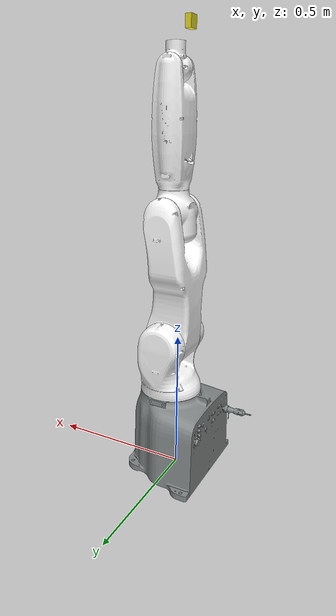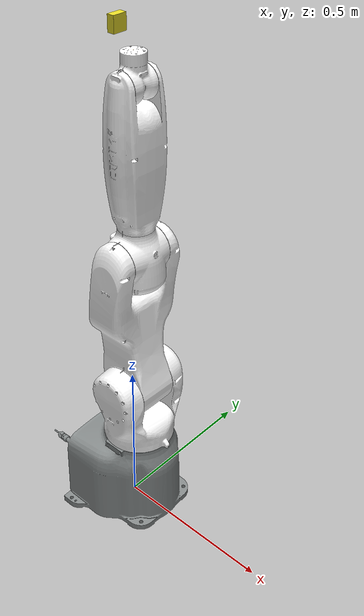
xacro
<?xml version="1.0"?>
<robot xmlns:xacro="http://ros.org/wiki/xacro" name="HLRobot">
    <xacro:property name="PI" value="3.1415926535897931"/>
    <xacro:include filename="arm.xacro" />
    <xacro:include filename="CameraSensor.xacro"/>

    <xacro:Macro_CameraROS name="camera" parent="tool_frame" frame="camera_link" image_topic="image_raw" fov="1.396" hz="10" width="2560" height="1920">
        <origin xyz="0.05 0 0.05" rpy="0 0 0" />
     </xacro:Macro_CameraROS>

    <link name="camera_projection_frame"/>

    <joint name="camera_joint" type="fixed">
        <origin xyz="0 0 0" rpy="-1.5707 0 -1.5707" />
        <parent link="camera_link" />
        <child link="camera_projection_frame" />
    </joint>

</robot>

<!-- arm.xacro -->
<robot xmlns:xacro="http://ros.org/wiki/xacro" name="arm">

    <link name="base_footprint">
        <visual>
            <origin xyz="0 0 0" rpy="0 0 0" />
            <geometry>
                <sphere radius="0.001"/>
            </geometry>
        </visual>
        <collision>
            <origin xyz="0 0 0" rpy="0 0 0" />
            <geometry>
                <sphere radius="0.001"/>
            </geometry>
        </collision>
    </link>
    <link name="base_link">
        <inertial>
            <origin xyz="0.000405214557039469 0.00397651461292238 0.169839806497255" rpy="0 0 0" />
            <mass value="50" />
            <inertia ixx="0.10581489524942" ixy="0.000527121157082633" ixz="-7.56911148408879E-05" iyy="0.107337475091701" iyz="-0.00154168528325628" izz="0.101543534070196" />
        </inertial>
        <visual>
            <origin xyz="0 0 0" rpy="0 0 0" />
            <geometry>
                <mesh filename="package://hlrobot_gazebo/meshes/base_link.STL" />
            </geometry>
            <material name="">
                <color rgba="0.52156862745098 0.541176470588235 0.541176470588235 1" />
            </material>
        </visual>
        <collision>
            <origin xyz="0 0 0" rpy="0 0 0" />
            <geometry>
                <mesh filename="package://hlrobot_gazebo/meshes/base_link.STL" />
            </geometry>
        </collision>
    </link>
    <joint name="base_footprint2base_link" type="fixed">
        <origin xyz="0 0 0" rpy="0 0 -1.5707" />
        <parent link="base_footprint" />
        <child link="base_link" />
    </joint>
    <link name="link1">
        <inertial>
            <origin xyz="0.00618991955563981 0.000434449692377808 0.108490578152082" rpy="0 0 0" />
            <mass value="5.86522389328675" />
            <inertia ixx="0.0701296431279813" ixy="2.32003557486133E-05" ixz="0.000929023712430576" iyy="0.0469454868222595" iyz="-0.000290037040115787" izz="0.0473187424882217" />
        </inertial>
        <visual>
            <origin xyz="0 0 0" rpy="0 0 0" />
            <geometry>
                <mesh filename="package://hlrobot_gazebo/meshes/link1.STL" />
            </geometry>
            <material name="">
                <color rgba="1 1 1 1" />
            </material>
        </visual>
        <collision>
            <origin xyz="0 0 0" rpy="0 0 0" />
            <geometry>
                <mesh filename="package://hlrobot_gazebo/meshes/link1.STL" />
            </geometry>
        </collision>
    </link>
    <joint name="joint1" type="continuous">
        <origin xyz="-0.00013435849002087 0.0245001355111561 0.297" rpy="0 0 1.5707963267949" />
        <parent link="base_link" />
        <child link="link1" />
        <axis xyz="0 0 1" />
    </joint>
    <link name="link2">
        <inertial>
            <origin xyz="-0.0129472421061704 0.195085111512339 -7.49961324365638E-05" rpy="0 0 0" />
            <mass value="10.1072258905016" />
            <inertia ixx="0.263256183053944" ixy="0.00386135478561168" ixz="5.61953803517995E-08" iyy="0.0517012507195787" iyz="-2.05241533594351E-05" izz="0.242545433984185" />
        </inertial>
        <visual>
            <origin xyz="0 0 0" rpy="0 0 0" />
            <geometry>
                <mesh filename="package://hlrobot_gazebo/meshes/link2.STL" />
            </geometry>
            <material name="">
                <color rgba="1 1 1 1" />
            </material>
        </visual>
        <collision>
            <origin xyz="0 0 0" rpy="0 0 0" />
            <geometry>
                <mesh filename="package://hlrobot_gazebo/meshes/link2.STL" />
            </geometry>
        </collision>
    </link>
    <joint name="joint2" type="continuous">
        <origin xyz="0 9.99999999976693E-05 0.189139439157728" rpy="1.5707963267949 0 0" />
        <parent link="link1" />
        <child link="link2" />
        <axis xyz="0 0 -1" />
    </joint>
    <link name="link3">
        <inertial>
            <origin xyz="-0.000108844845618653 -0.0139358636724003 -0.000142913039055006" rpy="0 0 0" />
            <mass value="2.65740566873148" />
            <inertia ixx="0.00886183268521179" ixy="1.37642190281603E-05" ixz="1.284656785324E-08" iyy="0.00678736358244395" iyz="5.73796796321141E-06" izz="0.00937006388060566" />
        </inertial>
        <visual>
            <origin xyz="0 0 0" rpy="0 0 0" />
            <geometry>
                <mesh filename="package://hlrobot_gazebo/meshes/link3.STL" />
            </geometry>
            <material name="">
                <color rgba="1 1 1 1" />
            </material>
        </visual>
        <collision>
            <origin xyz="0 0 0" rpy="0 0 0" />
            <geometry>
                <mesh filename="package://hlrobot_gazebo/meshes/link3.STL" />
            </geometry>
        </collision>
    </link>
    <joint name="joint3" type="continuous">
        <origin xyz="0 0.451860592710981 -0.000100000000000028" rpy="0 0 0" />
        <parent link="link2" />
        <child link="link3" />
        <axis xyz="0 0 -1" />
    </joint>
    <link name="link4">
        <inertial>
            <origin xyz="-8.86388330648964E-05 -8.21928935558796E-05 0.18467124485822" rpy="0 0 0" />
            <mass value="4.34532297508078" />
            <inertia ixx="0.0474113957336292" ixy="4.2127603467986E-08" ixz="-5.26635457332329E-05" iyy="0.0448119152975099" iyz="6.59212483096878E-05" izz="0.00958455134527702" />
        </inertial>
        <visual>
            <origin xyz="0 0 0" rpy="0 0 0" />
            <geometry>
                <mesh filename="package://hlrobot_gazebo/meshes/link4.STL" />
            </geometry>
            <material name="">
                <color rgba="1 1 1 1" />
            </material>
        </visual>
        <collision>
            <origin xyz="0 0 0" rpy="0 0 0" />
            <geometry>
                <mesh filename="package://hlrobot_gazebo/meshes/link4.STL" />
            </geometry>
        </collision>
    </link>
    <joint name="joint4" type="continuous">
        <origin xyz="0 0.0799999999999998 0" rpy="-1.5707963267949 0 0" />
        <parent link="link3" />
        <child link="link4" />
        <axis xyz="0 0 1" />
    </joint>
    <link name="link5">
        <inertial>
            <origin xyz="-9.01966818289611E-09 0.0150673345014429 0.000970287859869526" rpy="0 0 0" />
            <mass value="0.486634760640137" />
            <inertia ixx="0.000670946201229993" ixy="-1.02766841457603E-10" ixz="-6.73537980241108E-10" iyy="0.000391738154780886" iyz="1.16937873469867E-05" izz="0.000627437195953237" />
        </inertial>
        <visual>
            <origin xyz="0 0 0" rpy="0 0 0" />
            <geometry>
                <mesh filename="package://hlrobot_gazebo/meshes/link5.STL" />
            </geometry>
            <material name="">
                <color rgba="1 1 1 1" />
            </material>
        </visual>
        <collision>
            <origin xyz="0 0 0" rpy="0 0 0" />
            <geometry>
                <mesh filename="package://hlrobot_gazebo/meshes/link5.STL" />
            </geometry>
        </collision>
    </link>
    <joint name="joint5" type="continuous">
        <origin xyz="0 0 0.370000000000001" rpy="1.5707963267949 0 0" />
        <parent link="link4" />
        <child link="link5" />
        <axis xyz="0 0 -1" />
    </joint>
    <link name="link6">
        <inertial>
            <origin xyz="0.000182837342452855 0.000101096543022138 0.00313183222146129" rpy="0 0 0" />
            <mass value="0.00778582634380437" />
            <inertia ixx="9.19779718042607E-07" ixy="-1.27003710700796E-08" ixz="-1.52057934315707E-09" iyy="9.08150760544638E-07" iyz="-4.13772433755291E-10" izz="1.77182633837523E-06" />
        </inertial>
        <visual>
            <origin xyz="0 0 0" rpy="0 0 0" />
            <geometry>
                <mesh filename="package://hlrobot_gazebo/meshes/link6.STL" />
            </geometry>
            <material name="">
                <color rgba="1 1 1 1" />
            </material>
        </visual>
        <collision>
            <origin xyz="0 0 0" rpy="0 0 0" />
            <geometry>
                <mesh filename="package://hlrobot_gazebo/meshes/link6.STL" />
            </geometry>
        </collision>
    </link>
    <joint name="joint6" type="continuous">
        <origin xyz="0 0.0772999999999984 0" rpy="1.5707963267949 1.5707963267949 0" />
        <parent link="link5" />
        <child link="link6" />
        <axis xyz="0 0 -1" />
    </joint>
    <link name="tool_frame">
        <visual>
            <origin xyz="0 0 0" rpy="0 0 0" />
            <geometry>
                <sphere radius="0.001"/>
            </geometry>
        </visual>
        <collision>
            <origin xyz="0 0 0" rpy="0 0 0" />
            <geometry>
                <sphere radius="0.001"/>
            </geometry>
        </collision>
    </link>
    <joint name="joint62toolframe" type="fixed">
        <origin xyz="0 0 0" rpy="3.14159 0 -1.5707" />
        <parent link="link6" />
        <child link="tool_frame" />
    </joint>

    <!-- transmission -->
    <transmission name="joint1_trans">
        <type>transmission_interface/SimpleTransmission</type>
        <joint name="joint1">
            <hardwareInterface>hardware_interface/PositionJointInterface</hardwareInterface>
        </joint>
        <actuator name="motor1">
            <mechanicalReduction>1</mechanicalReduction>
        </actuator>
    </transmission>
    <!-- transmission -->
    <transmission name="join2_trans">
        <type>transmission_interface/SimpleTransmission</type>
        <joint name="joint2">
            <hardwareInterface>hardware_interface/PositionJointInterface</hardwareInterface>
        </joint>
        <actuator name="motor2">
            <mechanicalReduction>1</mechanicalReduction>
        </actuator>
    </transmission>
    <!-- transmission -->
    <transmission name="joint3_trans">
        <type>transmission_interface/SimpleTransmission</type>
        <joint name="joint3">
            <hardwareInterface>hardware_interface/PositionJointInterface</hardwareInterface>
        </joint>
        <actuator name="motor3">
            <mechanicalReduction>1</mechanicalReduction>
        </actuator>
    </transmission>
    <!-- transmission -->
    <transmission name="joint4_trans">
        <type>transmission_interface/SimpleTransmission</type>
        <joint name="joint4">
            <hardwareInterface>hardware_interface/PositionJointInterface</hardwareInterface>
        </joint>
        <actuator name="motor4">
            <mechanicalReduction>1</mechanicalReduction>
        </actuator>
    </transmission>
    <!-- transmission -->
    <transmission name="joint5_trans">
        <type>transmission_interface/SimpleTransmission</type>
        <joint name="joint5">
            <hardwareInterface>hardware_interface/PositionJointInterface</hardwareInterface>
        </joint>
        <actuator name="motor5">
            <mechanicalReduction>1</mechanicalReduction>
        </actuator>
    </transmission>
    <transmission name="joint6_trans">
        <type>transmission_interface/SimpleTransmission</type>
        <joint name="joint6">
            <hardwareInterface>hardware_interface/PositionJointInterface</hardwareInterface>
        </joint>
        <actuator name="motor6">
            <mechanicalReduction>1</mechanicalReduction>
        </actuator>
    </transmission>

    <!-- ROS Control plugin for Gazebo -->
    <gazebo>
        <plugin name="gazebo_ros_control" filename="libgazebo_ros_control.so"/>
    </gazebo>

    <!-- Used for fixing robot to Gazebo 'base_link' -->
    <link name="world"/>

    <joint name="fixed" type="fixed">
        <parent link="world"/>
        <child link="base_footprint"/>
    </joint>

</robot>

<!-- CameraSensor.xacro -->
<robot xmlns:xacro="http://www.ros.org/wiki/xacro" name="Camera">
    <xacro:property name="camera_size" value="0.02"/>

    <xacro:macro name="Macro_CameraROS" params="name parent frame image_topic hz *origin fov width height">
        <joint name="${name}_mount_joint" type="fixed">
            <axis xyz="0 1 0"/>
            <xacro:insert_block name="origin"/>
            <parent link="${parent}"/>
            <child link="${frame}"/>
        </joint>

        <!-- Camera -->
        <link name="${frame}">
            <collision>
                <origin xyz="0 0 0" rpy="0 0 0"/>
                <geometry>
                    <box size="${camera_size} ${2*camera_size} ${2*camera_size}"/>
                </geometry>
            </collision>

            <visual>
                <origin xyz="0 0 0" rpy="0 0 0"/>
                <geometry>
                    <box size="${camera_size} ${2*camera_size} ${2*camera_size}"/>
                </geometry>
            </visual>

            <inertial>
                <mass value="1e-5"/>
                <origin xyz="0 0 0" rpy="0 0 0"/>
                <inertia ixx="1e-6" ixy="0" ixz="0" iyy="1e-6" iyz="0" izz="1e-6"/>
            </inertial>
        </link>

        <gazebo reference="${frame}">
            <sensor type="camera" name="${name}">
                <visualize>true</visualize>
                <update_rate>${hz}</update_rate>
                <camera name="head">
                    <horizontal_fov>${fov}</horizontal_fov>
                    <image>
                        <width>${width}</width>
                        <height>${height}</height>
                        <format>R8G8B8</format>
                    </image>
                    <clip>
                        <near>0.02</near>
                        <far>300</far>
                    </clip>
                    <noise>
                        <type>gaussian</type>
                        <mean>0.0</mean>
                        <stddev>0.007</stddev>
                    </noise>
                </camera>
                <plugin name="camera_controller" filename="libgazebo_ros_camera.so">
                    <alwaysOn>true</alwaysOn>
                    <updateRate>${hz}</updateRate>
                    <cameraName>${name}</cameraName>
                    <imageTopicName>${image_topic}</imageTopicName>
                    <cameraInfoTopicName>camera_info</cameraInfoTopicName>
                    <frameName>${frame}</frameName>
                    <hackBaseline>0.07</hackBaseline>
                    <distortionK1>-0.3299099196112457</distortionK1>
                    <distortionK2>0.125097165288712</distortionK2>
                    <distortionK3>0</distortionK3>
                    <distortionT1>0.001174557712517122</distortionT1>
                    <distortionT2>-0.0006193756409617658</distortionT2>
                </plugin>
            </sensor>
            <material>Gazebo/Yellow</material>
        </gazebo>
    </xacro:macro>
</robot>
